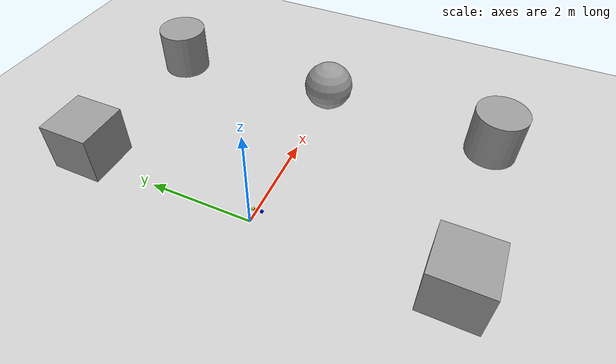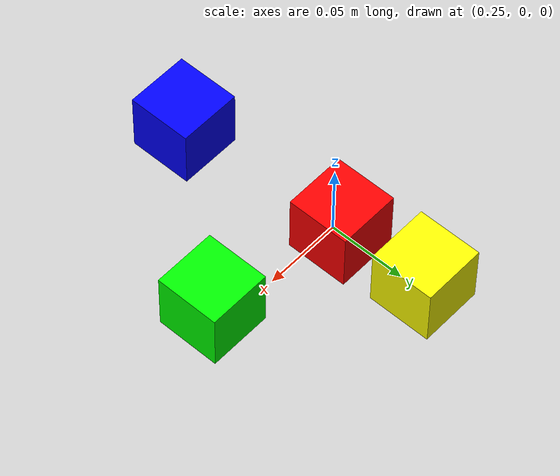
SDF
<sdf version="1.7">
 <world name="default">
  <light name="sun" type="directional">
   <pose>0 0 10 0 -0 0</pose>
   <diffuse>0.8 0.8 0.8 1</diffuse>
   <specular>0.2 0.2 0.2 1</specular>
   <attenuation>
    <range>1000</range>
    <constant>0.9</constant>
    <linear>0.01</linear>
    <quadratic>0.001</quadratic>
   </attenuation>
   <direction>-0.5 0.1 -0.9</direction>
   <spot><inner_angle>0</inner_angle><outer_angle>0</outer_angle><falloff>0</falloff></spot>
  </light>
  <model name="ground_plane">
   <static>1</static>
   <link name="link">
    <collision name="collision">
     <geometry><plane><normal>0 0 1</normal><size>100 100</size></plane></geometry>
     <surface>
      <contact><collide_bitmask>65535</collide_bitmask></contact>
      <friction><ode><mu>100</mu><mu2>50</mu2></ode></friction>
     </surface>
    </collision>
    <visual name="visual">
     <cast_shadows>0</cast_shadows>
     <geometry><plane><normal>0 0 1</normal><size>100 100</size></plane></geometry>
     <material>
      <script><uri>file://media/materials/scripts/gazebo.material</uri><name>Gazebo/Grey</name></script>
     </material>
    </visual>
   </link>
  </model>
  <gravity>0 0 -9.8</gravity>
  <magnetic_field>6e-06 2.3e-05 -4.2e-05</magnetic_field>
  <atmosphere type="adiabatic"/>
  <physics type="ode">
   <max_step_size>0.001</max_step_size>
   <real_time_factor>1</real_time_factor>
   <real_time_update_rate>1000</real_time_update_rate>
  </physics>
  <scene><ambient>0.4 0.4 0.4 1</ambient><background>0.7 0.7 0.7 1</background><shadows>1</shadows></scene>
  <spherical_coordinates>
   <surface_model>EARTH_WGS84</surface_model>
   <latitude_deg>0</latitude_deg>
   <longitude_deg>0</longitude_deg>
   <elevation>0</elevation>
   <heading_deg>0</heading_deg>
  </spherical_coordinates>
  <model name="unit_box">
   <pose>0.068291 -3.48168 0.499995 1e-05 -0 0</pose>
   <link name="link">
    <inertial>
     <mass>1</mass>
     <inertia>
      <ixx>0.166667</ixx>
      <ixy>0</ixy>
      <ixz>0</ixz>
      <iyy>0.166667</iyy>
      <iyz>0</iyz>
      <izz>0.166667</izz>
     </inertia>
    </inertial>
    <collision name="collision"><geometry><box><size>1 1 1</size></box></geometry></collision>
    <visual name="visual">
     <geometry><box><size>1 1 1</size></box></geometry>
     <material>
      <script><name>Gazebo/Grey</name><uri>file://media/materials/scripts/gazebo.material</uri></script>
     </material>
    </visual>
   </link>
  </model>
  <model name="unit_cylinder">
   <pose>3.47627 -3.49256 0.499993 -3e-06 -1e-06 -0</pose>
   <link name="link">
    <inertial>
     <mass>1</mass>
     <inertia><ixx>0.145833</ixx><ixy>0</ixy><ixz>0</ixz><iyy>0.145833</iyy><iyz>0</iyz><izz>0.125</izz></inertia>
    </inertial>
    <collision name="collision">
     <geometry><cylinder><radius>0.5</radius><length>1</length></cylinder></geometry>
    </collision>
    <visual name="visual">
     <geometry><cylinder><radius>0.5</radius><length>1</length></cylinder></geometry>
     <material>
      <script><name>Gazebo/Grey</name><uri>file://media/materials/scripts/gazebo.material</uri></script>
     </material>
    </visual>
   </link>
  </model>
  <model name="unit_sphere">
   <pose>3.51162 -0.04371 0.5 0 -0 0</pose>
   <link name="link">
    <inertial>
     <mass>1</mass>
     <inertia><ixx>0.1</ixx><ixy>0</ixy><ixz>0</ixz><iyy>0.1</iyy><iyz>0</iyz><izz>0.1</izz></inertia>
    </inertial>
    <collision name="collision"><geometry><sphere><radius>0.5</radius></sphere></geometry></collision>
    <visual name="visual">
     <geometry><sphere><radius>0.5</radius></sphere></geometry>
     <material>
      <script><name>Gazebo/Grey</name><uri>file://media/materials/scripts/gazebo.material</uri></script>
     </material>
    </visual>
   </link>
  </model>
  <model name="unit_cylinder_0">
   <pose>3.47233 3.52471 0.499993 -3e-06 -1e-06 -0</pose>
   <link name="link">
    <inertial>
     <mass>1</mass>
     <inertia><ixx>0.145833</ixx><ixy>0</ixy><ixz>0</ixz><iyy>0.145833</iyy><iyz>0</iyz><izz>0.125</izz></inertia>
    </inertial>
    <collision name="collision">
     <geometry><cylinder><radius>0.5</radius><length>1</length></cylinder></geometry>
    </collision>
    <visual name="visual">
     <geometry><cylinder><radius>0.5</radius><length>1</length></cylinder></geometry>
     <material>
      <script><name>Gazebo/Grey</name><uri>file://media/materials/scripts/gazebo.material</uri></script>
     </material>
    </visual>
   </link>
  </model>
  <model name="unit_box_0">
   <pose>0.121932 3.48434 0.499995 0 -1e-05 5e-06</pose>
   <link name="link">
    <inertial>
     <mass>1</mass>
     <inertia>
      <ixx>0.166667</ixx>
      <ixy>0</ixy>
      <ixz>0</ixz>
      <iyy>0.166667</iyy>
      <iyz>0</iyz>
      <izz>0.166667</izz>
     </inertia>
    </inertial>
    <collision name="collision"><geometry><box><size>1 1 1</size></box></geometry></collision>
    <visual name="visual">
     <geometry><box><size>1 1 1</size></box></geometry>
     <material>
      <script><name>Gazebo/Grey</name><uri>file://media/materials/scripts/gazebo.material</uri></script>
     </material>
    </visual>
   </link>
  </model>
  <light name="user_point_light_0" type="point">
   <pose>1.52638 0.009612 1 0 -0 0</pose>
   <diffuse>0.5 0.5 0.5 1</diffuse>
   <specular>0.1 0.1 0.1 1</specular>
   <attenuation>
    <range>20</range>
    <constant>0.5</constant>
    <linear>0.01</linear>
    <quadratic>0.001</quadratic>
   </attenuation>
   <cast_shadows>0</cast_shadows>
   <direction>0 0 -1</direction>
   <spot><inner_angle>0</inner_angle><outer_angle>0</outer_angle><falloff>0</falloff></spot>
  </light>
  <model name="box_blue">
   <link name="link">
    <inertial>
     <mass>0.05</mass>
     <inertia>
      <ixx>1.333e-05</ixx>
      <ixy>0</ixy>
      <ixz>0</ixz>
      <iyy>1.317e-05</iyy>
      <iyz>0</iyz>
      <izz>1.372e-05</izz>
     </inertia>
    </inertial>
    <visual name="visual">
     <geometry><box><size>0.040337 0.040817 0.039148</size></box></geometry>
     <material>
      <script><name>Gazebo/Grey</name><uri>file://media/materials/scripts/gazebo.material</uri></script>
      <shader type="pixel"><normal_map>__default__</normal_map></shader>
      <ambient>0 0 1 1</ambient>
      <diffuse>0.7 0.7 0.7 1</diffuse>
      <specular>0.01 0.01 0.01 1</specular>
      <emissive>0 0 0 1</emissive>
     </material>
    </visual>
    <collision name="collision">
     <geometry><box><size>0.040337 0.040817 0.039148</size></box></geometry>
     <surface>
      <friction>
       <ode><mu>1</mu><mu2>1</mu2><fdir1>0 0 0</fdir1><slip1>0</slip1><slip2>0</slip2></ode>
       <torsional>
        <coefficient>1</coefficient>
        <patch_radius>0</patch_radius>
        <surface_radius>0</surface_radius>
        <use_patch_radius>1</use_patch_radius>
        <ode><slip>0</slip></ode>
       </torsional>
      </friction>
      <bounce><restitution_coefficient>0</restitution_coefficient><threshold>1e+06</threshold></bounce>
      <contact>
       <collide_without_contact>0</collide_without_contact>
       <collide_without_contact_bitmask>1</collide_without_contact_bitmask>
       <collide_bitmask>1</collide_bitmask>
       <ode>
        <soft_cfm>0</soft_cfm>
        <soft_erp>0.2</soft_erp>
        <kp>1e+13</kp>
        <kd>1</kd>
        <max_vel>0.01</max_vel>
        <min_depth>0</min_depth>
       </ode>
       <bullet>
        <split_impulse>1</split_impulse>
        <split_impulse_penetration_threshold>-0.01</split_impulse_penetration_threshold>
        <soft_cfm>0</soft_cfm>
        <soft_erp>0.2</soft_erp>
        <kp>1e+13</kp>
        <kd>1</kd>
       </bullet>
      </contact>
     </surface>
    </collision>
   </link>
   <static>0</static>
   <pose>0.261331 -0.102348 0.019567 -1e-06 1.3e-05 -4e-06</pose>
  </model>
  <model name="box_green">
   <link name="link">
    <inertial>
     <mass>0.05</mass>
     <inertia>
      <ixx>1.333e-05</ixx>
      <ixy>0</ixy>
      <ixz>0</ixz>
      <iyy>1.317e-05</iyy>
      <iyz>0</iyz>
      <izz>1.372e-05</izz>
     </inertia>
    </inertial>
    <visual name="visual">
     <geometry><box><size>0.040337 0.040817 0.039148</size></box></geometry>
     <material>
      <script><name>Gazebo/Grey</name><uri>file://media/materials/scripts/gazebo.material</uri></script>
      <shader type="pixel"><normal_map>__default__</normal_map></shader>
      <ambient>0 1 0 1</ambient>
      <diffuse>0.7 0.7 0.7 1</diffuse>
      <specular>0.01 0.01 0.01 1</specular>
      <emissive>0 0 0 1</emissive>
     </material>
    </visual>
    <collision name="collision">
     <geometry><box><size>0.040337 0.040817 0.039148</size></box></geometry>
     <surface>
      <friction>
       <ode><mu>1</mu><mu2>1</mu2><fdir1>0 0 0</fdir1><slip1>0</slip1><slip2>0</slip2></ode>
       <torsional>
        <coefficient>1</coefficient>
        <patch_radius>0</patch_radius>
        <surface_radius>0</surface_radius>
        <use_patch_radius>1</use_patch_radius>
        <ode><slip>0</slip></ode>
       </torsional>
      </friction>
      <bounce><restitution_coefficient>0</restitution_coefficient><threshold>1e+06</threshold></bounce>
      <contact>
       <collide_without_contact>0</collide_without_contact>
       <collide_without_contact_bitmask>1</collide_without_contact_bitmask>
       <collide_bitmask>1</collide_bitmask>
       <ode>
        <soft_cfm>0</soft_cfm>
        <soft_erp>0.2</soft_erp>
        <kp>1e+13</kp>
        <kd>1</kd>
        <max_vel>0.01</max_vel>
        <min_depth>0</min_depth>
       </ode>
       <bullet>
        <split_impulse>1</split_impulse>
        <split_impulse_penetration_threshold>-0.01</split_impulse_penetration_threshold>
        <soft_cfm>0</soft_cfm>
        <soft_erp>0.2</soft_erp>
        <kp>1e+13</kp>
        <kd>1</kd>
       </bullet>
      </contact>
     </surface>
    </collision>
   </link>
   <static>0</static>
   <pose>0.34084 -0.006903 0.019566 5e-06 8.2e-05 1.4e-05</pose>
  </model>
  <model name="box_yellow">
   <link name="link">
    <inertial>
     <mass>0.05</mass>
     <inertia>
      <ixx>1.333e-05</ixx>
      <ixy>0</ixy>
      <ixz>0</ixz>
      <iyy>1.317e-05</iyy>
      <iyz>0</iyz>
      <izz>1.372e-05</izz>
     </inertia>
    </inertial>
    <visual name="visual">
     <geometry><box><size>0.040337 0.040817 0.039148</size></box></geometry>
     <material>
      <script><name>Gazebo/Grey</name><uri>file://media/materials/scripts/gazebo.material</uri></script>
      <shader type="pixel"><normal_map>__default__</normal_map></shader>
      <ambient>1 1 0 1</ambient>
      <diffuse>0.7 0.7 0.7 1</diffuse>
      <specular>0.01 0.01 0.01 1</specular>
      <emissive>0 0 0 1</emissive>
     </material>
    </visual>
    <collision name="collision">
     <geometry><box><size>0.040337 0.040817 0.039148</size></box></geometry>
     <surface>
      <friction>
       <ode><mu>1</mu><mu2>1</mu2><fdir1>0 0 0</fdir1><slip1>0</slip1><slip2>0</slip2></ode>
       <torsional>
        <coefficient>1</coefficient>
        <patch_radius>0</patch_radius>
        <surface_radius>0</surface_radius>
        <use_patch_radius>1</use_patch_radius>
        <ode><slip>0</slip></ode>
       </torsional>
      </friction>
      <bounce><restitution_coefficient>0</restitution_coefficient><threshold>1e+06</threshold></bounce>
      <contact>
       <collide_without_contact>0</collide_without_contact>
       <collide_without_contact_bitmask>1</collide_without_contact_bitmask>
       <collide_bitmask>1</collide_bitmask>
       <ode>
        <soft_cfm>0</soft_cfm>
        <soft_erp>0.2</soft_erp>
        <kp>1e+13</kp>
        <kd>1</kd>
        <max_vel>0.01</max_vel>
        <min_depth>0</min_depth>
       </ode>
       <bullet>
        <split_impulse>1</split_impulse>
        <split_impulse_penetration_threshold>-0.01</split_impulse_penetration_threshold>
        <soft_cfm>0</soft_cfm>
        <soft_erp>0.2</soft_erp>
        <kp>1e+13</kp>
        <kd>1</kd>
       </bullet>
      </contact>
     </surface>
    </collision>
   </link>
   <static>0</static>
   <pose>0.251922 0.067135 0.019572 -8.8e-05 -0 -7e-06</pose>
  </model>
  <model name="box_red_0">
   <link name="link">
    <visual name="visual">
     <geometry><box><size>0.04 0.04 0.04</size></box></geometry>
     <material>
      <script><name>Gazebo/Grey</name><uri>file://media/materials/scripts/gazebo.material</uri></script>
      <shader type="pixel"><normal_map>__default__</normal_map></shader>
      <ambient>1 0 0 1</ambient>
      <diffuse>0.7 0.7 0.7 1</diffuse>
      <specular>0.01 0.01 0.01 1</specular>
      <emissive>0 0 0 1</emissive>
     </material>
    </visual>
    <collision name="collision"><geometry><box><size>0.04 0.04 0.04</size></box></geometry></collision>
   </link>
   <mu1>5</mu1>
   <mu2>5</mu2>
   <pose>0.255197 0.010039 0.019574 0 -0 0</pose>
  </model>
 </world>
</sdf>
